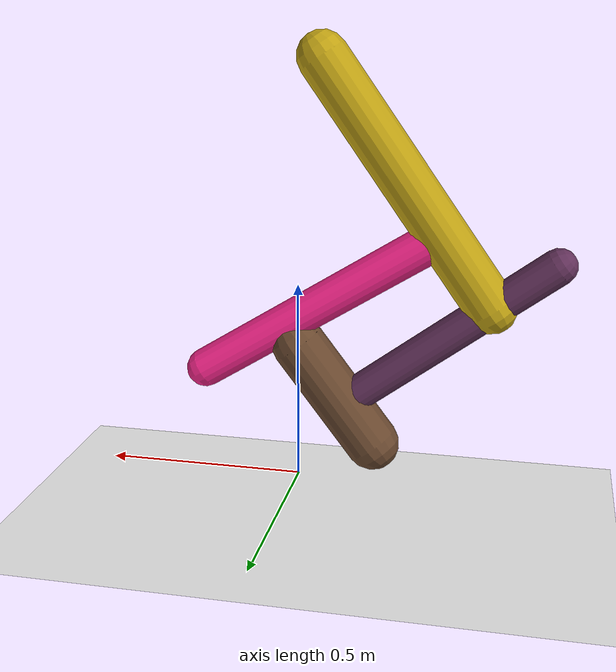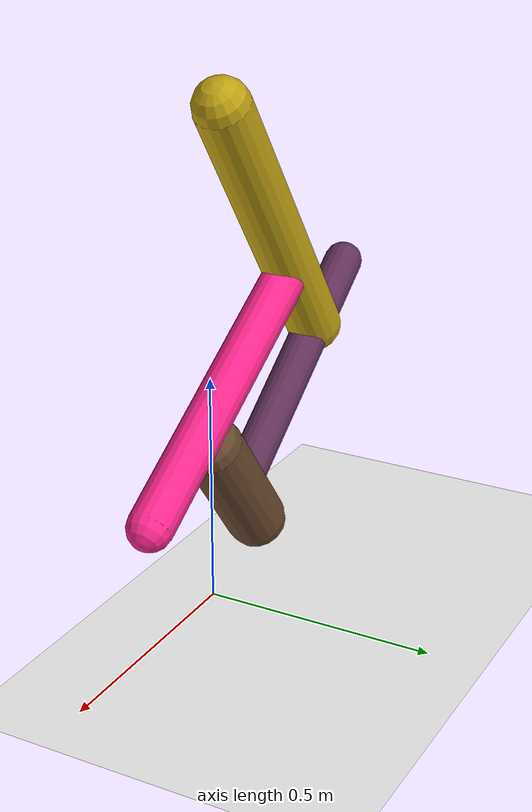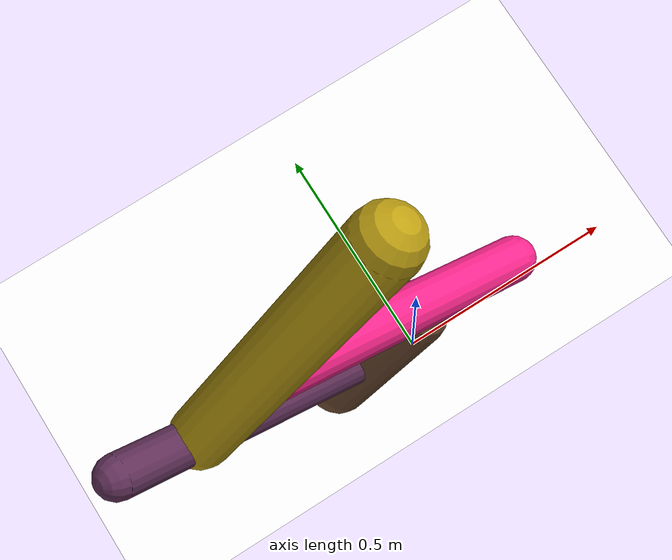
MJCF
<mujoco model="morphology">
  <option timestep="0.01"/>
  <default>
    <default class="/"/>
  </default>
  <asset>
    <texture name="texplane" type="2d" builtin="checker" rgb1="0.1 0.2 0.3" rgb2="0.2 0.3 0.4" width="300" height="300"/>
    <material name="MatPlane" class="/" texture="texplane" texrepeat="20 20" specular="1" shininess="1" reflectance="0.5"/>
  </asset>
  <worldbody>
    <light name="//unnamed_light_0" class="/" directional="true" pos="0 0 1.5" dir="0 0 -1.3" cutoff="1e+02" exponent="1" diffuse="1 1 1" specular="0.1 0.1 0.1"/>
    <geom name="ground" class="/" type="plane" size="15 15 0.5" material="MatPlane" rgba="1 1 1 1"/>
    <body name="body" pos="0 0 0.35">
      <geom name="geom0" class="/" type="capsule" contype="1" conaffinity="1" condim="3" size="0.067" rgba="0.41 0.28 0.18 1" friction="0.4 0.1 0.1" fromto="0 0 0 -0.19 0 -0.25"/>
      <body name="body1" pos="-0.11 0 -0.15">
        <geom name="geom1" class="/" type="capsule" contype="1" conaffinity="1" condim="3" size="0.044" rgba="0.38 0.19 0.35 1" friction="0.4 0.1 0.1" fromto="0 0 0 -0.51 0 0.38"/>
        <body name="body2" pos="-0.36 0 0.27">
          <geom name="geom2" class="/" type="capsule" contype="1" conaffinity="1" condim="3" size="0.062" rgba="0.75 0.63 0.074 1" friction="0.4 0.1 0.1" fromto="0 0 0 0.41 0 0.58"/>
          <body name="body3" pos="0.12 0 0.17">
            <geom name="geom3" class="/" type="capsule" contype="1" conaffinity="1" condim="3" size="0.049" rgba="0.99 0.15 0.56 1" friction="0.4 0.1 0.1" fromto="0 0 0 0.59 0 -0.37"/>
            <joint name="joint3" class="/" type="hinge" axis="0 1 0" limited="true" stiffness="20" range="-42 42" armature="0.1" damping="2"/>
          </body>
          <joint name="joint2" class="/" type="hinge" axis="0 1 0" limited="true" stiffness="20" range="-38 38" armature="0.1" damping="2"/>
        </body>
        <joint name="joint1" class="/" type="hinge" axis="0 1 0" limited="true" stiffness="20" range="-69 69" armature="0.1" damping="2"/>
      </body>
      <joint name="rootx" class="/" type="slide" axis="1 0 0" limited="false" stiffness="0" armature="0" damping="0"/>
      <joint name="rootz" class="/" type="slide" axis="0 0 1" limited="false" stiffness="0" armature="0" damping="0"/>
      <joint name="rooty" class="/" type="hinge" axis="0 1 0" limited="false" stiffness="0" armature="0" damping="0"/>
    </body>
  </worldbody>
  <actuator>
    <motor name="motor3" class="/" ctrllimited="true" ctrlrange="-1 1" gear="1.8e+02" joint="joint3"/>
    <motor name="motor2" class="/" ctrllimited="true" ctrlrange="-1 1" gear="1.8e+02" joint="joint2"/>
    <motor name="motor1" class="/" ctrllimited="true" ctrlrange="-1 1" gear="1.1e+02" joint="joint1"/>
  </actuator>
  <sensor>
    <subtreelinvel name="velocity" body="body"/>
  </sensor>
</mujoco>
